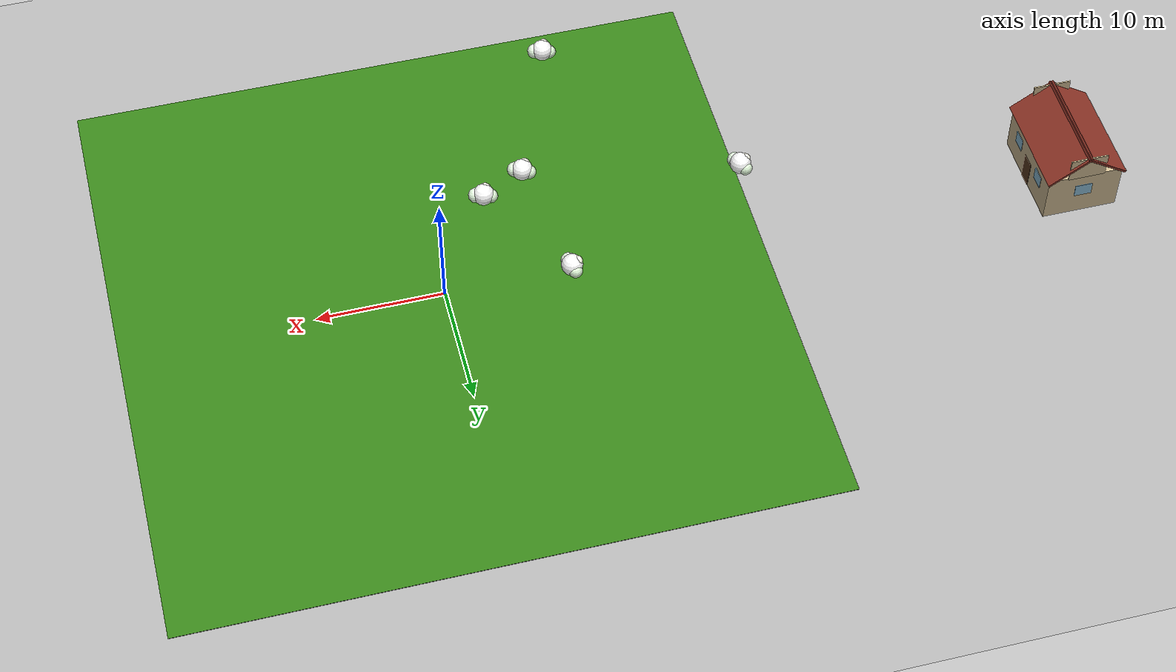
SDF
<sdf version="1.9">
 <world name="vtol_world">
  <model name="ground_plane">
   <static>true</static>
   <link name="link">
    <collision name="collision">
     <geometry><plane><normal>0 0 1</normal><size>200 200</size></plane></geometry>
    </collision>
    <visual name="visual">
     <geometry><plane><normal>0 0 1</normal><size>200 200</size></plane></geometry>
     <material>
      <ambient>0.7 0.7 0.7 1</ambient>
      <diffuse>0.7 0.7 0.7 1</diffuse>
      <specular>0.4 0.4 0.4 1</specular>
     </material>
    </visual>
   </link>
  </model>
  <model name="grass">
   <static>true</static>
   <link name="link">
    <visual name="visual">
     <pose>0 0 0.002 0 0 0</pose>
     <geometry><plane><normal>0 0 1</normal><size>50 50</size></plane></geometry>
     <material>
      <ambient>0.18 0.42 0.08 1</ambient>
      <diffuse>0.22 0.52 0.10 1</diffuse>
      <specular>0.05 0.12 0.03 1</specular>
     </material>
    </visual>
   </link>
  </model>
  <include><uri>model://house1</uri><name>house_4</name><pose>-50 0 0 0 0 -1.5708</pose></include>
  <include><uri>model://bush</uri><name>bush_4</name><pose>-10.0 0.0 0 0 0 4.442</pose></include>
  <include><uri>model://bush</uri><name>bush_5</name><pose>-5.0 -8.66 0 0 0 5.489</pose></include>
  <include><uri>model://bush</uri><name>bush_11</name><pose>-8.55 -10.45 0 0 0 5.327</pose></include>
  <include><uri>model://bush</uri><name>bush_18</name><pose>-25.5 -6.83 0 0 0 4.703</pose></include>
  <include><uri>model://bush</uri><name>bush_19</name><pose>-13.2 -22.86 0 0 0 5.489</pose></include>
 </world>
</sdf>
